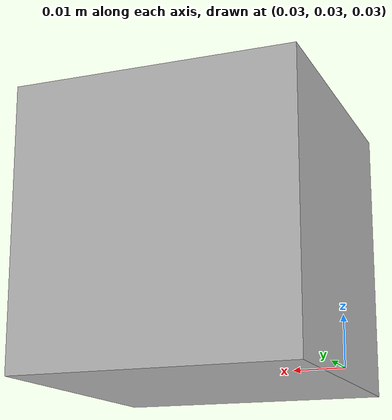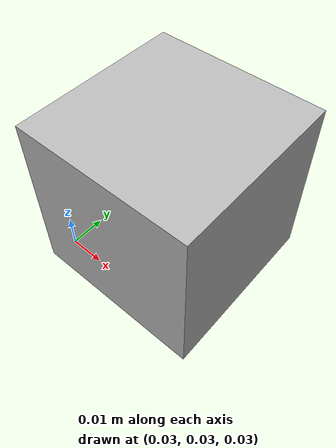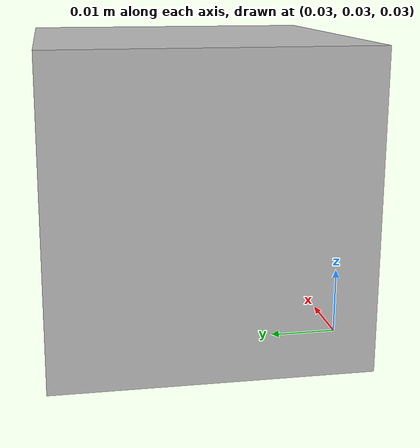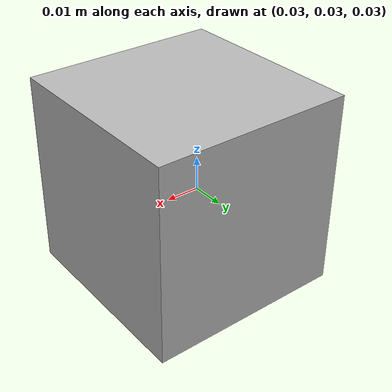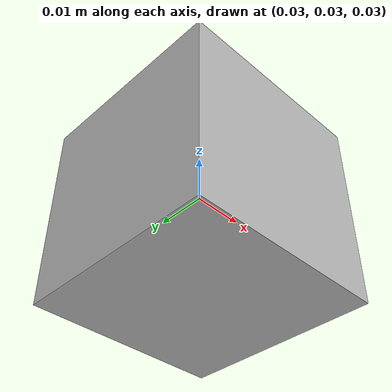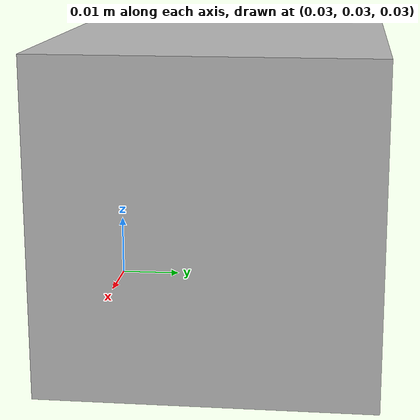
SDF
<?xml version='1.0'?>
<sdf version="1.4">
    <model name="obstacle_box_small">
        <pose>0.05 0.05 0.05 0 0 0</pose>
        <static>false</static>
        <link name="obstacle_small_link">
            <inertial>
                <mass>0.5</mass>
                <inertia>
                    <ixx>0.0002</ixx>       <!-- for a box: ixx = 0.083 * mass * (y*y + z*z) -->
                    <ixy>0.0</ixy>          <!-- for a box: ixy = 0 -->
                    <ixz>0.0</ixz>          <!-- for a box: ixz = 0 -->
                    <iyy>0.0002</iyy>       <!-- for a box: iyy = 0.083 * mass * (x*x + z*z) -->
                    <iyz>0.0</iyz>          <!-- for a box: iyz = 0 -->
                    <izz>0.0002</izz>       <!-- for a box: izz = 0.083 * mass * (x*x + y*y) -->
                </inertia>
            </inertial>
            <collision name="obstacle_small_collision">
                <geometry>
                    <box>
                        <size>0.05 0.05 0.05</size>
                    </box>
                </geometry>
            </collision>
            <visual name="obstacle_small_visual">
                <geometry>
                    <box>
                        <size>0.05 0.05 0.05</size>
                    </box>
                </geometry>
            </visual>
            <sensor name="obstacle_small_contact_sensor" type="contact">
                <always_on>1</always_on>
                <update_rate>5</update_rate>
                <contact>
                    <collision>obstacle_small_collision</collision>
                    <topic>/obstacle_small_contact</topic>
                </contact>
            </sensor>
        </link>
    </model>
</sdf>
